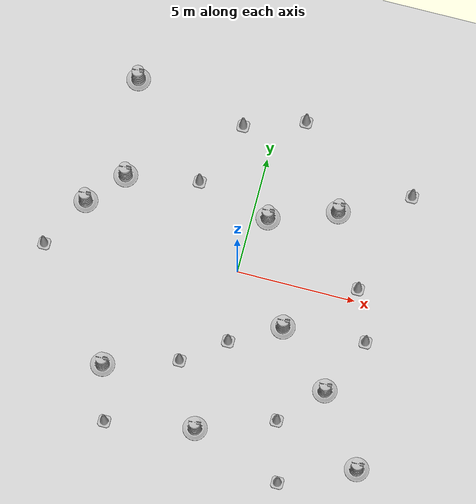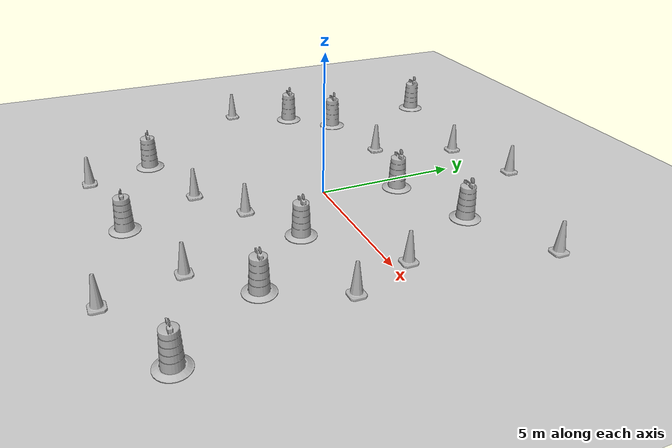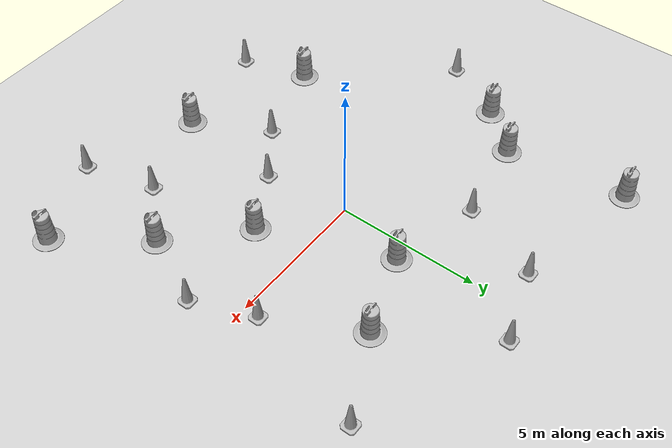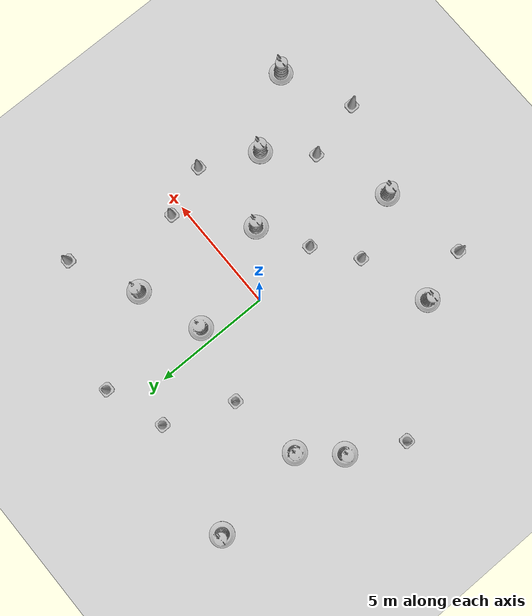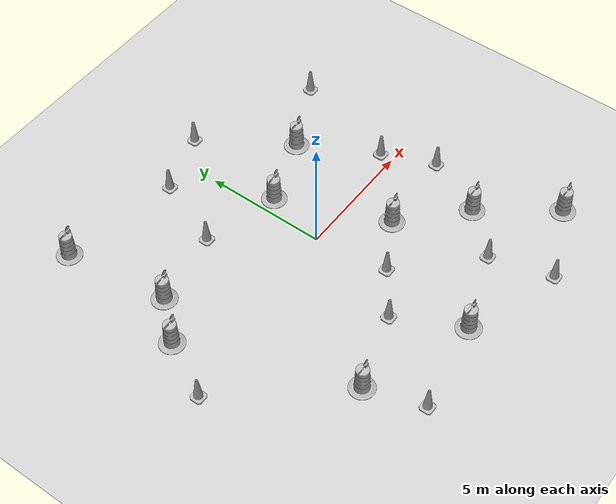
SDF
<sdf version="1.7">
 <world name="default">
  <light name="sun" type="directional">
   <pose>0 0 10 0 -0 0</pose>
   <diffuse>0.8 0.8 0.8 1</diffuse>
   <specular>0.2 0.2 0.2 1</specular>
   <attenuation>
    <range>1000</range>
    <constant>0.9</constant>
    <linear>0.01</linear>
    <quadratic>0.001</quadratic>
   </attenuation>
   <direction>-0.5 0.1 -0.9</direction>
   <spot><inner_angle>0</inner_angle><outer_angle>0</outer_angle><falloff>0</falloff></spot>
  </light>
  <model name="ground_plane">
   <static>1</static>
   <link name="link">
    <collision name="collision">
     <geometry><plane><normal>0 0 1</normal><size>100 100</size></plane></geometry>
     <surface><friction><ode><mu>100</mu><mu2>50</mu2></ode></friction></surface>
    </collision>
    <visual name="visual">
     <cast_shadows>0</cast_shadows>
     <geometry><plane><normal>0 0 1</normal><size>100 100</size></plane></geometry>
     <material>
      <script><uri>file://media/materials/scripts/gazebo.material</uri><name>Gazebo/Grey</name></script>
     </material>
    </visual>
   </link>
  </model>
  <gravity>0 0 -9.8</gravity>
  <magnetic_field>6e-06 2.3e-05 -4.2e-05</magnetic_field>
  <atmosphere type="adiabatic"/>
  <physics type="ode">
   <max_step_size>0.001</max_step_size>
   <real_time_factor>1</real_time_factor>
   <real_time_update_rate>1000</real_time_update_rate>
  </physics>
  <scene><ambient>0.4 0.4 0.4 1</ambient><background>0.7 0.7 0.7 1</background><shadows>1</shadows></scene>
  <audio><device>default</device></audio>
  <spherical_coordinates>
   <surface_model>EARTH_WGS84</surface_model>
   <latitude_deg>0</latitude_deg>
   <longitude_deg>0</longitude_deg>
   <elevation>0</elevation>
   <heading_deg>0</heading_deg>
  </spherical_coordinates>
  <model name="Construction Cone">
   <link name="link">
    <collision name="collision">
     <geometry>
      <mesh><scale>10 10 10</scale><uri>model://construction_cone/meshes/construction_cone.dae</uri></mesh>
     </geometry>
    </collision>
    <visual name="visual">
     <geometry>
      <mesh><scale>10 10 10</scale><uri>model://construction_cone/meshes/construction_cone.dae</uri></mesh>
     </geometry>
    </visual>
    <inertial>
     <inertia><ixx>1</ixx><ixy>0</ixy><ixz>0</ixz><iyy>1</iyy><iyz>0</iyz><izz>1</izz></inertia>
     <mass>1</mass>
    </inertial>
   </link>
   <pose>0.38658 -2.96938 -0 0 -0 0</pose>
  </model>
  <model name="Construction Barrel">
   <link name="link">
    <inertial>
     <pose>0 0 0.4 0 -0 0</pose>
     <mass>500</mass>
     <inertia><ixx>51.2096</ixx><iyy>51.2096</iyy><izz>25</izz><ixy>0</ixy><ixz>0</ixz><iyz>0</iyz></inertia>
    </inertial>
    <collision name="collision">
     <geometry><mesh><uri>model://construction_barrel/meshes/construction_barrel.dae</uri></mesh></geometry>
    </collision>
    <visual name="visual">
     <geometry><mesh><uri>model://construction_barrel/meshes/construction_barrel.dae</uri></mesh></geometry>
    </visual>
   </link>
   <pose>2.41863 -1.81022 1e-06 3e-06 2e-06 -3.1e-05</pose>
  </model>
  <model name="Construction Cone_0">
   <link name="link">
    <collision name="collision">
     <geometry>
      <mesh><scale>10 10 10</scale><uri>model://construction_cone/meshes/construction_cone.dae</uri></mesh>
     </geometry>
    </collision>
    <visual name="visual">
     <geometry>
      <mesh><scale>10 10 10</scale><uri>model://construction_cone/meshes/construction_cone.dae</uri></mesh>
     </geometry>
    </visual>
    <inertial>
     <inertia><ixx>1</ixx><ixy>0</ixy><ixz>0</ixz><iyy>1</iyy><iyz>0</iyz><izz>1</izz></inertia>
     <mass>1</mass>
    </inertial>
   </link>
   <pose>-1.33675 -4.25841 -0 0 -0 0</pose>
  </model>
  <model name="Construction Barrel_0">
   <link name="link">
    <inertial>
     <pose>0 0 0.4 0 -0 0</pose>
     <mass>500</mass>
     <inertia><ixx>51.2096</ixx><iyy>51.2096</iyy><izz>25</izz><ixy>0</ixy><ixz>0</ixz><iyz>0</iyz></inertia>
    </inertial>
    <collision name="collision">
     <geometry><mesh><uri>model://construction_barrel/meshes/construction_barrel.dae</uri></mesh></geometry>
    </collision>
    <visual name="visual">
     <geometry><mesh><uri>model://construction_barrel/meshes/construction_barrel.dae</uri></mesh></geometry>
    </visual>
   </link>
   <pose>0.006024 -6.84059 1e-06 3e-06 2e-06 -2.8e-05</pose>
  </model>
  <model name="Construction Cone_1">
   <link name="link">
    <collision name="collision">
     <geometry>
      <mesh><scale>10 10 10</scale><uri>model://construction_cone/meshes/construction_cone.dae</uri></mesh>
     </geometry>
    </collision>
    <visual name="visual">
     <geometry>
      <mesh><scale>10 10 10</scale><uri>model://construction_cone/meshes/construction_cone.dae</uri></mesh>
     </geometry>
    </visual>
    <inertial>
     <inertia><ixx>1</ixx><ixy>0</ixy><ixz>0</ixz><iyy>1</iyy><iyz>0</iyz><izz>1</izz></inertia>
     <mass>1</mass>
    </inertial>
   </link>
   <pose>3.15014 -5.68543 -0 0 -0 0</pose>
  </model>
  <model name="Construction Barrel_1">
   <link name="link">
    <inertial>
     <pose>0 0 0.4 0 -0 0</pose>
     <mass>500</mass>
     <inertia><ixx>51.2096</ixx><iyy>51.2096</iyy><izz>25</izz><ixy>0</ixy><ixz>0</ixz><iyz>0</iyz></inertia>
    </inertial>
    <collision name="collision">
     <geometry><mesh><uri>model://construction_barrel/meshes/construction_barrel.dae</uri></mesh></geometry>
    </collision>
    <visual name="visual">
     <geometry><mesh><uri>model://construction_barrel/meshes/construction_barrel.dae</uri></mesh></geometry>
    </visual>
   </link>
   <pose>4.7446 -3.97643 1e-06 3e-06 2e-06 -2.6e-05</pose>
  </model>
  <model name="Construction Barrel_2">
   <link name="link">
    <inertial>
     <pose>0 0 0.4 0 -0 0</pose>
     <mass>500</mass>
     <inertia><ixx>51.2096</ixx><iyy>51.2096</iyy><izz>25</izz><ixy>0</ixy><ixz>0</ixz><iyz>0</iyz></inertia>
    </inertial>
    <collision name="collision">
     <geometry><mesh><uri>model://construction_barrel/meshes/construction_barrel.dae</uri></mesh></geometry>
    </collision>
    <visual name="visual">
     <geometry><mesh><uri>model://construction_barrel/meshes/construction_barrel.dae</uri></mesh></geometry>
    </visual>
   </link>
   <pose>-4.34782 -5.21041 1e-06 3e-06 2e-06 -2.5e-05</pose>
  </model>
  <model name="Construction Cone_2">
   <link name="link">
    <collision name="collision">
     <geometry>
      <mesh><scale>10 10 10</scale><uri>model://construction_cone/meshes/construction_cone.dae</uri></mesh>
     </geometry>
    </collision>
    <visual name="visual">
     <geometry>
      <mesh><scale>10 10 10</scale><uri>model://construction_cone/meshes/construction_cone.dae</uri></mesh>
     </geometry>
    </visual>
    <inertial>
     <inertia><ixx>1</ixx><ixy>0</ixy><ixz>0</ixz><iyy>1</iyy><iyz>0</iyz><izz>1</izz></inertia>
     <mass>1</mass>
    </inertial>
   </link>
   <pose>-2.49537 3.34641 -8e-06 -5e-06 -0 -0</pose>
  </model>
  <model name="Construction Barrel_3">
   <link name="link">
    <inertial>
     <pose>0 0 0.4 0 -0 0</pose>
     <mass>500</mass>
     <inertia><ixx>51.2096</ixx><iyy>51.2096</iyy><izz>25</izz><ixy>0</ixy><ixz>0</ixz><iyz>0</iyz></inertia>
    </inertial>
    <collision name="collision">
     <geometry><mesh><uri>model://construction_barrel/meshes/construction_barrel.dae</uri></mesh></geometry>
    </collision>
    <visual name="visual">
     <geometry><mesh><uri>model://construction_barrel/meshes/construction_barrel.dae</uri></mesh></geometry>
    </visual>
   </link>
   <pose>0.652137 2.54917 1e-06 3e-06 2e-06 -2.2e-05</pose>
  </model>
  <model name="Construction Barrel_4">
   <link name="link">
    <inertial>
     <pose>0 0 0.4 0 -0 0</pose>
     <mass>500</mass>
     <inertia><ixx>51.2096</ixx><iyy>51.2096</iyy><izz>25</izz><ixy>0</ixy><ixz>0</ixz><iyz>0</iyz></inertia>
    </inertial>
    <collision name="collision">
     <geometry><mesh><uri>model://construction_barrel/meshes/construction_barrel.dae</uri></mesh></geometry>
    </collision>
    <visual name="visual">
     <geometry><mesh><uri>model://construction_barrel/meshes/construction_barrel.dae</uri></mesh></geometry>
    </visual>
   </link>
   <pose>-5.55275 2.84197 1e-06 3e-06 2e-06 -2.1e-05</pose>
  </model>
  <model name="Construction Cone_3">
   <link name="link">
    <collision name="collision">
     <geometry>
      <mesh><scale>10 10 10</scale><uri>model://construction_cone/meshes/construction_cone.dae</uri></mesh>
     </geometry>
    </collision>
    <visual name="visual">
     <geometry>
      <mesh><scale>10 10 10</scale><uri>model://construction_cone/meshes/construction_cone.dae</uri></mesh>
     </geometry>
    </visual>
    <inertial>
     <inertia><ixx>1</ixx><ixy>0</ixy><ixz>0</ixz><iyy>1</iyy><iyz>0</iyz><izz>1</izz></inertia>
     <mass>1</mass>
    </inertial>
   </link>
   <pose>5.01312 0.525086 0 -0 -0 -0</pose>
  </model>
  <model name="Construction Barrel_5">
   <link name="link">
    <inertial>
     <pose>0 0 0.4 0 -0 0</pose>
     <mass>500</mass>
     <inertia><ixx>51.2096</ixx><iyy>51.2096</iyy><izz>25</izz><ixy>0</ixy><ixz>0</ixz><iyz>0</iyz></inertia>
    </inertial>
    <collision name="collision">
     <geometry><mesh><uri>model://construction_barrel/meshes/construction_barrel.dae</uri></mesh></geometry>
    </collision>
    <visual name="visual">
     <geometry><mesh><uri>model://construction_barrel/meshes/construction_barrel.dae</uri></mesh></geometry>
    </visual>
   </link>
   <pose>-6.87004 1.35235 -0 0 0 -1.8e-05</pose>
  </model>
  <model name="Construction Cone_4">
   <link name="link">
    <collision name="collision">
     <geometry>
      <mesh><scale>10 10 10</scale><uri>model://construction_cone/meshes/construction_cone.dae</uri></mesh>
     </geometry>
    </collision>
    <visual name="visual">
     <geometry>
      <mesh><scale>10 10 10</scale><uri>model://construction_cone/meshes/construction_cone.dae</uri></mesh>
     </geometry>
    </visual>
    <inertial>
     <inertia><ixx>1</ixx><ixy>0</ixy><ixz>0</ixz><iyy>1</iyy><iyz>0</iyz><izz>1</izz></inertia>
     <mass>1</mass>
    </inertial>
   </link>
   <pose>-8.04846 -0.86215 -5e-06 -4e-06 1e-06 0</pose>
  </model>
  <model name="Construction Cone_5">
   <link name="link">
    <collision name="collision">
     <geometry>
      <mesh><scale>10 10 10</scale><uri>model://construction_cone/meshes/construction_cone.dae</uri></mesh>
     </geometry>
    </collision>
    <visual name="visual">
     <geometry>
      <mesh><scale>10 10 10</scale><uri>model://construction_cone/meshes/construction_cone.dae</uri></mesh>
     </geometry>
    </visual>
    <inertial>
     <inertia><ixx>1</ixx><ixy>0</ixy><ixz>0</ixz><iyy>1</iyy><iyz>0</iyz><izz>1</izz></inertia>
     <mass>1</mass>
    </inertial>
   </link>
   <pose>5.8583 -1.58335 -1e-05 -1e-06 0 0</pose>
  </model>
  <model name="Construction Barrel_6">
   <link name="link">
    <inertial>
     <pose>0 0 0.4 0 -0 0</pose>
     <mass>500</mass>
     <inertia><ixx>51.2096</ixx><iyy>51.2096</iyy><izz>25</izz><ixy>0</ixy><ixz>0</ixz><iyz>0</iyz></inertia>
    </inertial>
    <collision name="collision">
     <geometry><mesh><uri>model://construction_barrel/meshes/construction_barrel.dae</uri></mesh></geometry>
    </collision>
    <visual name="visual">
     <geometry><mesh><uri>model://construction_barrel/meshes/construction_barrel.dae</uri></mesh></geometry>
    </visual>
   </link>
   <pose>3.41547 3.54437 0 0 0 -1.5e-05</pose>
  </model>
  <model name="Construction Cone_6">
   <link name="link">
    <collision name="collision">
     <geometry>
      <mesh><scale>10 10 10</scale><uri>model://construction_cone/meshes/construction_cone.dae</uri></mesh>
     </geometry>
    </collision>
    <visual name="visual">
     <geometry>
      <mesh><scale>10 10 10</scale><uri>model://construction_cone/meshes/construction_cone.dae</uri></mesh>
     </geometry>
    </visual>
    <inertial>
     <inertia><ixx>1</ixx><ixy>0</ixy><ixz>0</ixz><iyy>1</iyy><iyz>0</iyz><izz>1</izz></inertia>
     <mass>1</mass>
    </inertial>
   </link>
   <pose>-1.35416 6.1649 -0 0 -1e-06 0</pose>
  </model>
  <model name="Construction Barrel_7">
   <link name="link">
    <inertial>
     <pose>0 0 0.4 0 -0 0</pose>
     <mass>500</mass>
     <inertia><ixx>51.2096</ixx><iyy>51.2096</iyy><izz>25</izz><ixy>0</ixy><ixz>0</ixz><iyz>0</iyz></inertia>
    </inertial>
    <collision name="collision">
     <geometry><mesh><uri>model://construction_barrel/meshes/construction_barrel.dae</uri></mesh></geometry>
    </collision>
    <visual name="visual">
     <geometry><mesh><uri>model://construction_barrel/meshes/construction_barrel.dae</uri></mesh></geometry>
    </visual>
   </link>
   <pose>-6.13842 7.05174 -1e-06 0 5e-06 -1e-05</pose>
  </model>
  <model name="Construction Cone_7">
   <link name="link">
    <collision name="collision">
     <geometry>
      <mesh><scale>10 10 10</scale><uri>model://construction_cone/meshes/construction_cone.dae</uri></mesh>
     </geometry>
    </collision>
    <visual name="visual">
     <geometry>
      <mesh><scale>10 10 10</scale><uri>model://construction_cone/meshes/construction_cone.dae</uri></mesh>
     </geometry>
    </visual>
    <inertial>
     <inertia><ixx>1</ixx><ixy>0</ixy><ixz>0</ixz><iyy>1</iyy><iyz>0</iyz><izz>1</izz></inertia>
     <mass>1</mass>
    </inertial>
   </link>
   <pose>1.16005 7.00071 -1e-05 -1e-06 0 0</pose>
  </model>
  <model name="Construction Cone_8">
   <link name="link">
    <collision name="collision">
     <geometry>
      <mesh><scale>10 10 10</scale><uri>model://construction_cone/meshes/construction_cone.dae</uri></mesh>
     </geometry>
    </collision>
    <visual name="visual">
     <geometry>
      <mesh><scale>10 10 10</scale><uri>model://construction_cone/meshes/construction_cone.dae</uri></mesh>
     </geometry>
    </visual>
    <inertial>
     <inertia><ixx>1</ixx><ixy>0</ixy><ixz>0</ixz><iyy>1</iyy><iyz>0</iyz><izz>1</izz></inertia>
     <mass>1</mass>
    </inertial>
   </link>
   <pose>3.81828 -8.17376 -0 0 -0 0</pose>
  </model>
  <model name="Construction Barrel_8">
   <link name="link">
    <inertial>
     <pose>0 0 0.4 0 -0 0</pose>
     <mass>500</mass>
     <inertia><ixx>51.2096</ixx><iyy>51.2096</iyy><izz>25</izz><ixy>0</ixy><ixz>0</ixz><iyz>0</iyz></inertia>
    </inertial>
    <collision name="collision">
     <geometry><mesh><uri>model://construction_barrel/meshes/construction_barrel.dae</uri></mesh></geometry>
    </collision>
    <visual name="visual">
     <geometry><mesh><uri>model://construction_barrel/meshes/construction_barrel.dae</uri></mesh></geometry>
    </visual>
   </link>
   <pose>6.79957 -6.82069 1e-06 2e-06 3e-06 -6e-06</pose>
  </model>
  <model name="Construction Cone_9">
   <link name="link">
    <collision name="collision">
     <geometry>
      <mesh><scale>10 10 10</scale><uri>model://construction_cone/meshes/construction_cone.dae</uri></mesh>
     </geometry>
    </collision>
    <visual name="visual">
     <geometry>
      <mesh><scale>10 10 10</scale><uri>model://construction_cone/meshes/construction_cone.dae</uri></mesh>
     </geometry>
    </visual>
    <inertial>
     <inertia><ixx>1</ixx><ixy>0</ixy><ixz>0</ixz><iyy>1</iyy><iyz>0</iyz><izz>1</izz></inertia>
     <mass>1</mass>
    </inertial>
   </link>
   <pose>-3.65098 -7.49261 -0 0 -0 0</pose>
  </model>
  <model name="Construction Cone_10">
   <link name="link">
    <collision name="collision">
     <geometry>
      <mesh><scale>10 10 10</scale><uri>model://construction_cone/meshes/construction_cone.dae</uri></mesh>
     </geometry>
    </collision>
    <visual name="visual">
     <geometry>
      <mesh><scale>10 10 10</scale><uri>model://construction_cone/meshes/construction_cone.dae</uri></mesh>
     </geometry>
    </visual>
    <inertial>
     <inertia><ixx>1</ixx><ixy>0</ixy><ixz>0</ixz><iyy>1</iyy><iyz>0</iyz><izz>1</izz></inertia>
     <mass>1</mass>
    </inertial>
   </link>
   <pose>6.23416 4.95059 -0 0 -1e-06 0</pose>
  </model>
 </world>
</sdf>
